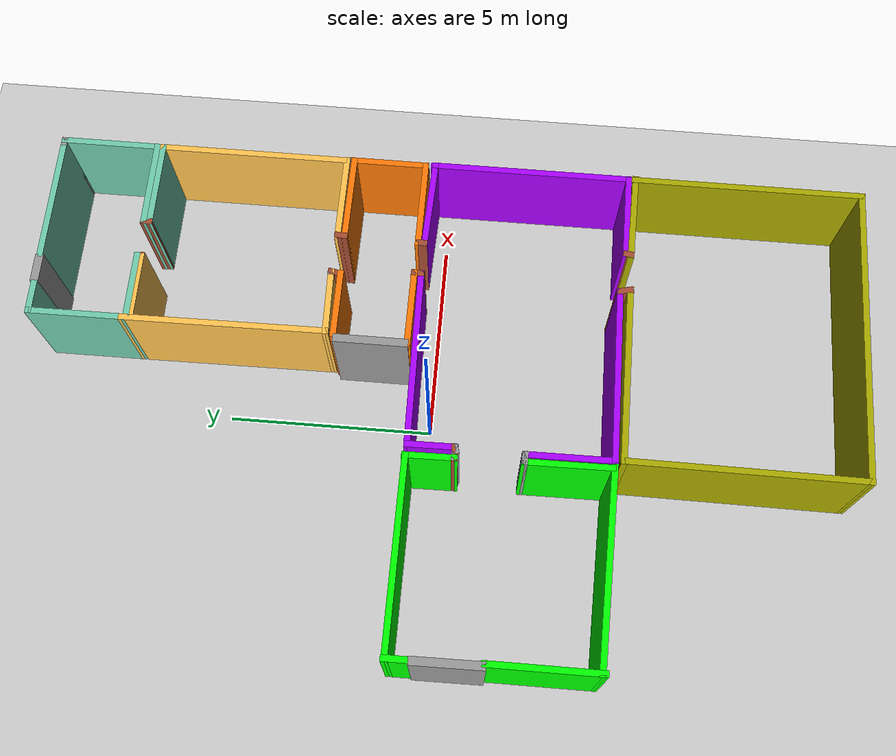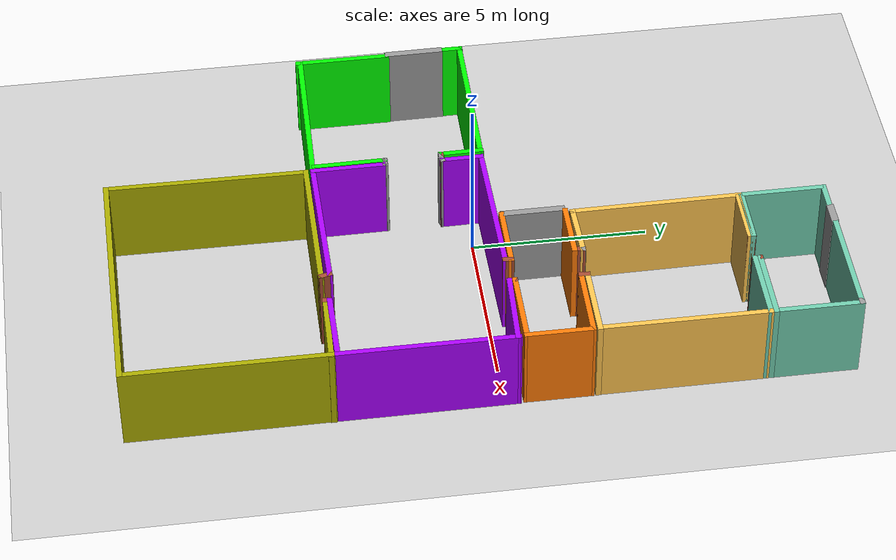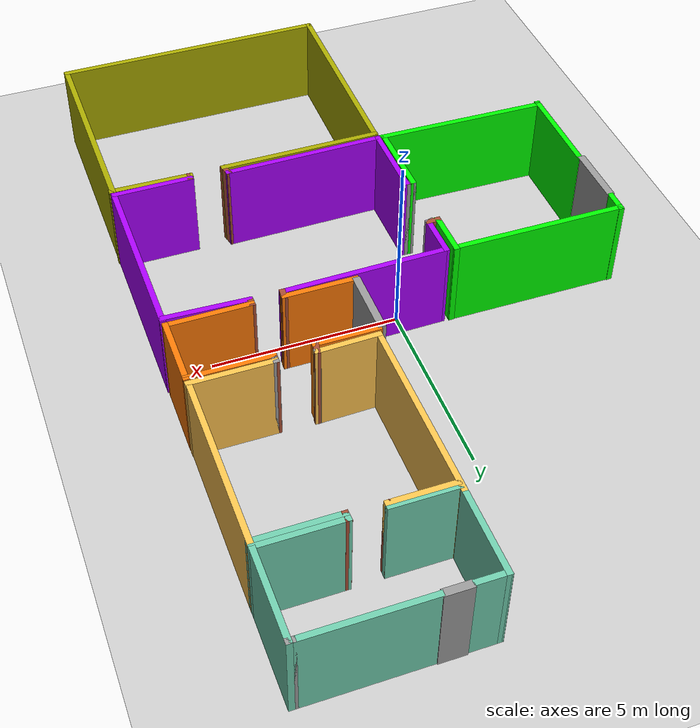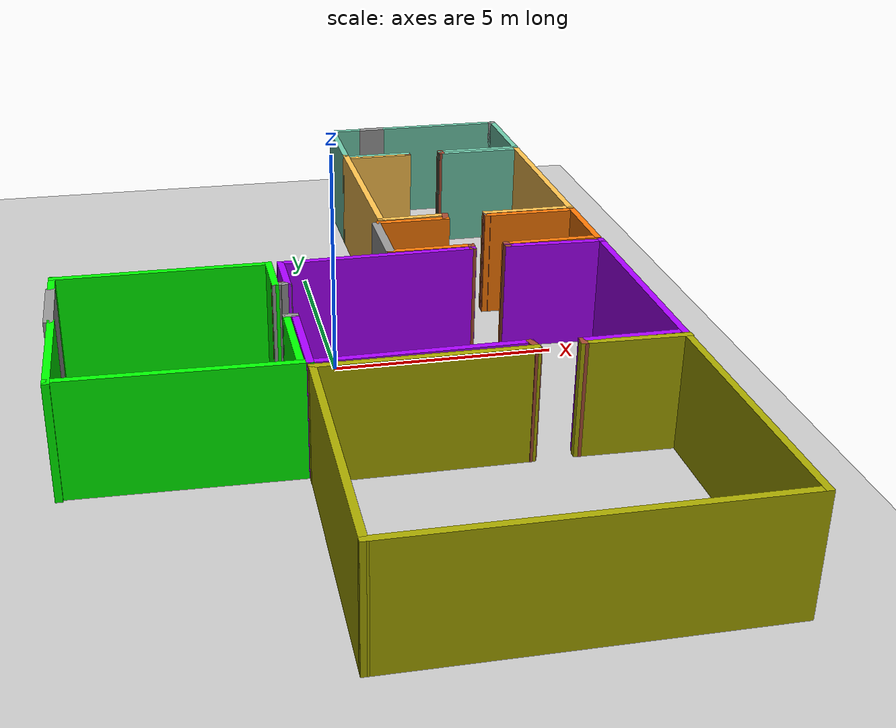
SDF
<sdf version="1.6">
 <world name="default">
  <light name="sun" type="directional">
   <pose>0 0 10 0 -0 0</pose>
   <diffuse>0.8 0.8 0.8 1</diffuse>
   <specular>0.2 0.2 0.2 1</specular>
   <attenuation>
    <range>1000</range>
    <constant>0.9</constant>
    <linear>0.01</linear>
    <quadratic>0.001</quadratic>
   </attenuation>
   <direction>-0.5 0.1 -0.9</direction>
  </light>
  <model name="ground_plane">
   <static>1</static>
   <link name="link">
    <collision name="collision">
     <geometry><plane><normal>0 0 1</normal><size>100 100</size></plane></geometry>
     <surface><friction><ode><mu>100</mu><mu2>50</mu2></ode></friction></surface>
    </collision>
    <visual name="visual">
     <cast_shadows>0</cast_shadows>
     <geometry><plane><normal>0 0 1</normal><size>100 100</size></plane></geometry>
     <material>
      <script><uri>file://media/materials/scripts/gazebo.material</uri><name>Gazebo/Grey</name></script>
     </material>
    </visual>
   </link>
  </model>
  <gravity>0 0 -9.8</gravity>
  <magnetic_field>6e-06 2.3e-05 -4.2e-05</magnetic_field>
  <atmosphere type="adiabatic"/>
  <physics name="default_physics" default="0" type="ode">
   <max_step_size>0.001</max_step_size>
   <real_time_factor>1</real_time_factor>
   <real_time_update_rate>1000</real_time_update_rate>
  </physics>
  <scene><ambient>0.4 0.4 0.4 1</ambient><background>0.7 0.7 0.7 1</background><shadows>1</shadows></scene>
  <spherical_coordinates>
   <surface_model>EARTH_WGS84</surface_model>
   <latitude_deg>0</latitude_deg>
   <longitude_deg>0</longitude_deg>
   <elevation>0</elevation>
   <heading_deg>0</heading_deg>
  </spherical_coordinates>
  <model name="MuseumOfNature">
   <pose>0.139597 -0.238583 0 0 -0 0</pose>
   <link name="Door_0">
    <collision name="Door_0_Collision">
     <geometry><box><size>0.709025 0.2 2.5</size></box></geometry>
     <pose>0 0 1.25 0 -0 0</pose>
    </collision>
    <visual name="Door_0_Visual">
     <pose>0 0 1.25 0 -0 0</pose>
     <geometry><box><size>0.709025 0.2 2.5</size></box></geometry>
     <material>
      <script><uri>file://media/materials/scripts/gazebo.material</uri><name>Gazebo/Grey</name></script>
     </material>
    </visual>
    <pose>2.46689 9.94542 0 0 -0 0</pose>
   </link>
   <link name="Door_1">
    <collision name="Door_1_Collision">
     <geometry><box><size>1.694 0.2 2.5</size></box></geometry>
     <pose>0 0 1.25 0 -0 0</pose>
    </collision>
    <visual name="Door_1_Visual">
     <pose>0 0 1.25 0 -0 0</pose>
     <geometry><box><size>1.694 0.2 2.5</size></box></geometry>
     <material>
      <script><uri>file://media/materials/scripts/gazebo.material</uri><name>Gazebo/Grey</name></script>
     </material>
    </visual>
    <pose>-6.1026 -0.705159 0 0 0 -1.56211</pose>
   </link>
   <link name="Door_2">
    <collision name="Door_2_Collision">
     <geometry><box><size>1.79983 0.2 2.5</size></box></geometry>
     <pose>0 0 1.25 0 -0 0</pose>
    </collision>
    <visual name="Door_2_Visual">
     <pose>0 0 1.25 0 -0 0</pose>
     <geometry><box><size>1.79983 0.2 2.5</size></box></geometry>
     <material>
      <script><uri>file://media/materials/scripts/gazebo.material</uri><name>Gazebo/Grey</name></script>
     </material>
    </visual>
    <pose>1.24189 1.73202 0 0 0 -1.57111</pose>
   </link>
   <link name="Wall_101">
    <collision name="Wall_101_Collision">
     <geometry><box><size>0.260697 0.15 2.5</size></box></geometry>
     <pose>0 0 1.25 0 -0 0</pose>
    </collision>
    <visual name="Wall_101_Visual">
     <pose>0 0 1.25 0 -0 0</pose>
     <geometry><box><size>0.260697 0.15 2.5</size></box></geometry>
     <material>
      <script><uri>file://media/materials/scripts/gazebo.material</uri><name>Gazebo/Bricks</name></script>
      <ambient>1 1 1 1</ambient>
     </material>
     <meta><layer>0</layer></meta>
    </visual>
    <pose>4.00839 -4.2707 0 0 0 -1.68022</pose>
   </link>
   <link name="Wall_102">
    <collision name="Wall_102_Collision">
     <geometry><box><size>2.25854 0.15 2.5</size></box></geometry>
     <pose>0 0 1.25 0 -0 0</pose>
    </collision>
    <visual name="Wall_102_Visual">
     <pose>0 0 1.25 0 -0 0</pose>
     <geometry><box><size>2.25854 0.15 2.5</size></box></geometry>
     <material>
      <script><uri>file://media/materials/scripts/gazebo.material</uri><name>Gazebo/Grey</name></script>
      <ambient>0.666667 0.666667 0 1</ambient>
     </material>
     <meta><layer>0</layer></meta>
    </visual>
    <pose>5.04486 -4.34898 0 0 0 -0.022066</pose>
   </link>
   <link name="Wall_104">
    <collision name="Wall_104_Collision">
     <geometry><box><size>7.5 0.15 2.5</size></box></geometry>
     <pose>0 0 1.25 0 -0 0</pose>
    </collision>
    <visual name="Wall_104_Visual">
     <pose>0 0 1.25 0 -0 0</pose>
     <geometry><box><size>7.5 0.15 2.5</size></box></geometry>
     <material>
      <script><uri>file://media/materials/scripts/gazebo.material</uri><name>Gazebo/Grey</name></script>
      <ambient>0.666667 0.666667 0 1</ambient>
     </material>
     <meta><layer>0</layer></meta>
    </visual>
    <pose>2.40061 -9.94898 0 0 -0 3.14159</pose>
   </link>
   <link name="Wall_105">
    <collision name="Wall_105_Collision">
     <geometry><box><size>5.75593 0.15 2.5</size></box></geometry>
     <pose>0 0 1.25 0 -0 0</pose>
    </collision>
    <visual name="Wall_105_Visual">
     <pose>0 0 1.25 0 -0 0</pose>
     <geometry><box><size>5.75593 0.15 2.5</size></box></geometry>
     <material>
      <script><uri>file://media/materials/scripts/gazebo.material</uri><name>Gazebo/Grey</name></script>
      <ambient>0.666667 0.666667 0 1</ambient>
     </material>
     <meta><layer>0</layer></meta>
    </visual>
    <pose>-1.25607 -7.14585 0 0 -0 1.56426</pose>
   </link>
   <link name="Wall_106">
    <collision name="Wall_106_Collision">
     <geometry><box><size>4.45 0.15 2.5</size></box></geometry>
     <pose>0 0 1.25 0 -0 0</pose>
    </collision>
    <visual name="Wall_106_Visual">
     <pose>0 0 1.25 0 -0 0</pose>
     <geometry><box><size>4.45 0.15 2.5</size></box></geometry>
     <material>
      <script><uri>file://media/materials/scripts/gazebo.material</uri><name>Gazebo/Grey</name></script>
      <ambient>0.666667 0.666667 0 1</ambient>
     </material>
     <meta><layer>0</layer></meta>
    </visual>
    <pose>0.905797 -4.34272 0 0 -0 0</pose>
   </link>
   <link name="Wall_108">
    <collision name="Wall_108_Collision">
     <geometry><box><size>0.398011 0.15 2.5</size></box></geometry>
     <pose>0 0 1.25 0 -0 0</pose>
    </collision>
    <visual name="Wall_108_Visual">
     <pose>0 0 1.25 0 -0 0</pose>
     <geometry><box><size>0.398011 0.15 2.5</size></box></geometry>
     <material>
      <script><uri>file://media/materials/scripts/gazebo.material</uri><name>Gazebo/Bricks</name></script>
      <ambient>1 1 1 1</ambient>
     </material>
     <meta><layer>0</layer></meta>
    </visual>
    <pose>3.03401 -4.22197 0 0 0 -1.34105</pose>
   </link>
   <link name="Wall_11">
    <collision name="Wall_11_Collision">
     <geometry><box><size>3.25 0.15 2.5</size></box></geometry>
     <pose>0 0 1.25 0 -0 0</pose>
    </collision>
    <visual name="Wall_11_Visual">
     <pose>0 0 1.25 0 -0 0</pose>
     <geometry><box><size>3.25 0.15 2.5</size></box></geometry>
     <material>
      <script><uri>file://media/materials/scripts/gazebo.material</uri><name>Gazebo/Grey</name></script>
      <ambient>0.435294 0.796078 0.67451 1</ambient>
     </material>
     <meta><layer>0</layer></meta>
    </visual>
    <pose>4.40297 9.94924 0 0 -0 0</pose>
   </link>
   <link name="Wall_110">
    <collision name="Wall_110_Collision">
     <geometry><box><size>0.15 0.15 2.5</size></box></geometry>
     <pose>0 0 1.25 0 -0 0</pose>
    </collision>
    <visual name="Wall_110_Visual">
     <pose>0 0 1.25 0 -0 0</pose>
     <geometry><box><size>0.15 0.15 2.5</size></box></geometry>
     <material>
      <script><uri>file://media/materials/scripts/gazebo.material</uri><name>Gazebo/Grey</name></script>
      <ambient>1 1 1 1</ambient>
     </material>
     <meta><layer>0</layer></meta>
    </visual>
    <pose>-1.26965 -2.09072 0 0 -0 0</pose>
   </link>
   <link name="Wall_111">
    <collision name="Wall_111_Collision">
     <geometry><box><size>0.15 0.15 2.5</size></box></geometry>
     <pose>0 0 1.25 0 -0 0</pose>
    </collision>
    <visual name="Wall_111_Visual">
     <pose>0 0 1.25 0 -0 0</pose>
     <geometry><box><size>0.15 0.15 2.5</size></box></geometry>
     <material>
      <script><uri>file://media/materials/scripts/gazebo.material</uri><name>Gazebo/Grey</name></script>
      <ambient>1 1 1 1</ambient>
     </material>
     <meta><layer>0</layer></meta>
    </visual>
    <pose>-1.26965 -2.09072 0 0 -0 0</pose>
   </link>
   <link name="Wall_113">
    <collision name="Wall_113_Collision">
     <geometry><box><size>0.324658 0.15 2.5</size></box></geometry>
     <pose>0 0 1.25 0 -0 0</pose>
    </collision>
    <visual name="Wall_113_Visual">
     <pose>0 0 1.25 0 -0 0</pose>
     <geometry><box><size>0.324658 0.15 2.5</size></box></geometry>
     <material>
      <script><uri>file://media/materials/scripts/gazebo.material</uri><name>Gazebo/Grey</name></script>
      <ambient>1 1 1 1</ambient>
     </material>
     <meta><layer>0</layer></meta>
    </visual>
    <pose>-1.35715 -2.08822 0 0 -0 3.11303</pose>
   </link>
   <link name="Wall_114">
    <collision name="Wall_114_Collision">
     <geometry><box><size>0.324658 0.15 2.5</size></box></geometry>
     <pose>0 0 1.25 0 -0 0</pose>
    </collision>
    <visual name="Wall_114_Visual">
     <pose>0 0 1.25 0 -0 0</pose>
     <geometry><box><size>0.324658 0.15 2.5</size></box></geometry>
     <material>
      <script><uri>file://media/materials/scripts/gazebo.material</uri><name>Gazebo/Grey</name></script>
      <ambient>1 1 1 1</ambient>
     </material>
     <meta><layer>0</layer></meta>
    </visual>
    <pose>-1.35715 -2.08822 0 0 0 -0.028564</pose>
   </link>
   <link name="Wall_115">
    <collision name="Wall_115_Collision">
     <geometry><box><size>0.324658 0.15 2.5</size></box></geometry>
     <pose>0 0 1.25 0 -0 0</pose>
    </collision>
    <visual name="Wall_115_Visual">
     <pose>0 0 1.25 0 -0 0</pose>
     <geometry><box><size>0.324658 0.15 2.5</size></box></geometry>
     <material>
      <script><uri>file://media/materials/scripts/gazebo.material</uri><name>Gazebo/Grey</name></script>
      <ambient>1 1 1 1</ambient>
     </material>
     <meta><layer>0</layer></meta>
    </visual>
    <pose>-1.35715 -2.08822 0 0 -0 3.11303</pose>
   </link>
   <link name="Wall_116">
    <collision name="Wall_116_Collision">
     <geometry><box><size>0.324658 0.15 2.5</size></box></geometry>
     <pose>0 0 1.25 0 -0 0</pose>
    </collision>
    <visual name="Wall_116_Visual">
     <pose>0 0 1.25 0 -0 0</pose>
     <geometry><box><size>0.324658 0.15 2.5</size></box></geometry>
     <material>
      <script><uri>file://media/materials/scripts/gazebo.material</uri><name>Gazebo/Grey</name></script>
      <ambient>1 1 1 1</ambient>
     </material>
     <meta><layer>0</layer></meta>
    </visual>
    <pose>-1.35715 -2.08822 0 0 0 -0.028564</pose>
   </link>
   <link name="Wall_117">
    <collision name="Wall_117_Collision">
     <geometry><box><size>0.324658 0.15 2.5</size></box></geometry>
     <pose>0 0 1.25 0 -0 0</pose>
    </collision>
    <visual name="Wall_117_Visual">
     <pose>0 0 1.25 0 -0 0</pose>
     <geometry><box><size>0.324658 0.15 2.5</size></box></geometry>
     <material>
      <script><uri>file://media/materials/scripts/gazebo.material</uri><name>Gazebo/Grey</name></script>
      <ambient>1 1 1 1</ambient>
     </material>
     <meta><layer>0</layer></meta>
    </visual>
    <pose>-1.35715 -2.08822 0 0 -0 3.11303</pose>
   </link>
   <link name="Wall_118">
    <collision name="Wall_118_Collision">
     <geometry><box><size>0.324658 0.15 2.5</size></box></geometry>
     <pose>0 0 1.25 0 -0 0</pose>
    </collision>
    <visual name="Wall_118_Visual">
     <pose>0 0 1.25 0 -0 0</pose>
     <geometry><box><size>0.324658 0.15 2.5</size></box></geometry>
     <material>
      <script><uri>file://media/materials/scripts/gazebo.material</uri><name>Gazebo/Bricks</name></script>
      <ambient>1 1 1 1</ambient>
     </material>
     <meta><layer>0</layer></meta>
    </visual>
    <pose>-1.35715 -2.08822 0 0 0 -0.028564</pose>
   </link>
   <link name="Wall_12">
    <collision name="Wall_12_Collision">
     <geometry><box><size>0.22355 0.15 2.5</size></box></geometry>
     <pose>0 0 1.25 0 -0 0</pose>
    </collision>
    <visual name="Wall_12_Visual">
     <pose>0 0 1.25 0 -0 0</pose>
     <geometry><box><size>0.22355 0.15 2.5</size></box></geometry>
     <material>
      <script><uri>file://media/materials/scripts/gazebo.material</uri><name>Gazebo/Grey</name></script>
      <ambient>1 1 1 1</ambient>
     </material>
     <meta><layer>0</layer></meta>
    </visual>
    <pose>6.00297 9.94924 0 0 -0 0</pose>
   </link>
   <link name="Wall_13">
    <collision name="Wall_13_Collision">
     <geometry><box><size>2.5 0.15 2.5</size></box></geometry>
     <pose>0 0 1.25 0 -0 0</pose>
    </collision>
    <visual name="Wall_13_Visual">
     <pose>0 0 1.25 0 -0 0</pose>
     <geometry><box><size>2.5 0.15 2.5</size></box></geometry>
     <material>
      <script><uri>file://media/materials/scripts/gazebo.material</uri><name>Gazebo/Grey</name></script>
      <ambient>0.435294 0.796078 0.67451 1</ambient>
     </material>
     <meta><layer>0</layer></meta>
    </visual>
    <pose>6.03975 8.77425 0 0 0 -1.5708</pose>
   </link>
   <link name="Wall_14">
    <collision name="Wall_14_Collision">
     <geometry><box><size>2.25 0.15 2.5</size></box></geometry>
     <pose>0 0 1.25 0 -0 0</pose>
    </collision>
    <visual name="Wall_14_Visual">
     <pose>0 0 1.25 0 -0 0</pose>
     <geometry><box><size>2.25 0.15 2.5</size></box></geometry>
     <material>
      <script><uri>file://media/materials/scripts/gazebo.material</uri><name>Gazebo/Grey</name></script>
      <ambient>0.435294 0.796078 0.67451 1</ambient>
     </material>
     <meta><layer>0</layer></meta>
    </visual>
    <pose>4.98975 7.59924 0 0 -0 3.14159</pose>
   </link>
   <link name="Wall_15">
    <collision name="Wall_15_Collision">
     <geometry><box><size>0.297009 0.15 2.5</size></box></geometry>
     <pose>0 0 1.25 0 -0 0</pose>
    </collision>
    <visual name="Wall_15_Visual">
     <pose>0 0 1.25 0 -0 0</pose>
     <geometry><box><size>0.297009 0.15 2.5</size></box></geometry>
     <material>
      <script><uri>file://media/materials/scripts/gazebo.material</uri><name>Gazebo/Bricks</name></script>
      <ambient>1 1 1 1</ambient>
     </material>
     <meta><layer>0</layer></meta>
    </visual>
    <pose>3.94155 7.52576 0 0 0 -1.54629</pose>
   </link>
   <link name="Wall_16">
    <collision name="Wall_16_Collision">
     <geometry><box><size>2.25 0.15 2.5</size></box></geometry>
     <pose>0 0 1.25 0 -0 0</pose>
    </collision>
    <visual name="Wall_16_Visual">
     <pose>0 0 1.25 0 -0 0</pose>
     <geometry><box><size>2.25 0.15 2.5</size></box></geometry>
     <material>
      <script><uri>file://media/materials/scripts/gazebo.material</uri><name>Gazebo/Grey</name></script>
      <ambient>0.435294 0.796078 0.67451 1</ambient>
     </material>
     <meta><layer>0</layer></meta>
    </visual>
    <pose>4.99335 7.45228 0 0 -0 0</pose>
   </link>
   <link name="Wall_18">
    <collision name="Wall_18_Collision">
     <geometry><box><size>4.703 0.15 2.5</size></box></geometry>
     <pose>0 0 1.25 0 -0 0</pose>
    </collision>
    <visual name="Wall_18_Visual">
     <pose>0 0 1.25 0 -0 0</pose>
     <geometry><box><size>4.703 0.15 2.5</size></box></geometry>
     <material>
      <script><uri>file://media/materials/scripts/gazebo.material</uri><name>Gazebo/Grey</name></script>
      <ambient>1 0.764706 0.305882 1</ambient>
     </material>
     <meta><layer>0</layer></meta>
    </visual>
    <pose>6.04135 5.17578 0 0 0 -1.57167</pose>
   </link>
   <link name="Wall_20">
    <collision name="Wall_20_Collision">
     <geometry><box><size>2.25 0.15 2.5</size></box></geometry>
     <pose>0 0 1.25 0 -0 0</pose>
    </collision>
    <visual name="Wall_20_Visual">
     <pose>0 0 1.25 0 -0 0</pose>
     <geometry><box><size>2.25 0.15 2.5</size></box></geometry>
     <material>
      <script><uri>file://media/materials/scripts/gazebo.material</uri><name>Gazebo/Grey</name></script>
      <ambient>1 0.764706 0.305882 1</ambient>
     </material>
     <meta><layer>0</layer></meta>
    </visual>
    <pose>5.00128 2.81881 0 0 -0 0</pose>
   </link>
   <link name="Wall_22">
    <collision name="Wall_22_Collision">
     <geometry><box><size>0.25 0.15 2.5</size></box></geometry>
     <pose>0 0 1.25 0 -0 0</pose>
    </collision>
    <visual name="Wall_22_Visual">
     <pose>0 0 1.25 0 -0 0</pose>
     <geometry><box><size>0.25 0.15 2.5</size></box></geometry>
     <material>
      <script><uri>file://media/materials/scripts/gazebo.material</uri><name>Gazebo/Grey</name></script>
      <ambient>1 1 1 1</ambient>
     </material>
     <meta><layer>0</layer></meta>
    </visual>
    <pose>3.95128 2.76881 0 0 0 -1.5708</pose>
   </link>
   <link name="Wall_32">
    <collision name="Wall_32_Collision">
     <geometry><box><size>0.318048 0.15 2.5</size></box></geometry>
     <pose>0 0 1.25 0 -0 0</pose>
    </collision>
    <visual name="Wall_32_Visual">
     <pose>0 0 1.25 0 -0 0</pose>
     <geometry><box><size>0.318048 0.15 2.5</size></box></geometry>
     <material>
      <script><uri>file://media/materials/scripts/gazebo.material</uri><name>Gazebo/Bricks</name></script>
      <ambient>1 1 1 1</ambient>
     </material>
     <meta><layer>0</layer></meta>
    </visual>
    <pose>3.94564 2.73498 0 0 0 -1.63796</pose>
   </link>
   <link name="Wall_33">
    <collision name="Wall_33_Collision">
     <geometry><box><size>2.26131 0.15 2.5</size></box></geometry>
     <pose>0 0 1.25 0 -0 0</pose>
    </collision>
    <visual name="Wall_33_Visual">
     <pose>0 0 1.25 0 -0 0</pose>
     <geometry><box><size>2.26131 0.15 2.5</size></box></geometry>
     <material>
      <script><uri>file://media/materials/scripts/gazebo.material</uri><name>Gazebo/Grey</name></script>
      <ambient>0.996078 0.47451 0.0196078 1</ambient>
     </material>
     <meta><layer>0</layer></meta>
    </visual>
    <pose>4.9994 2.64174 0 0 0 -0.005342</pose>
   </link>
   <link name="Wall_38">
    <collision name="Wall_38_Collision">
     <geometry><box><size>1.93783 0.15 2.5</size></box></geometry>
     <pose>0 0 1.25 0 -0 0</pose>
    </collision>
    <visual name="Wall_38_Visual">
     <pose>0 0 1.25 0 -0 0</pose>
     <geometry><box><size>1.93783 0.15 2.5</size></box></geometry>
     <material>
      <script><uri>file://media/materials/scripts/gazebo.material</uri><name>Gazebo/Grey</name></script>
      <ambient>0.996078 0.47451 0.0196078 1</ambient>
     </material>
     <meta><layer>0</layer></meta>
    </visual>
    <pose>6.05319 1.74219 0 0 -0 1.56873</pose>
   </link>
   <link name="Wall_40">
    <collision name="Wall_40_Collision">
     <geometry><box><size>2.297 0.15 2.5</size></box></geometry>
     <pose>0 0 1.25 0 -0 0</pose>
    </collision>
    <visual name="Wall_40_Visual">
     <pose>0 0 1.25 0 -0 0</pose>
     <geometry><box><size>2.297 0.15 2.5</size></box></geometry>
     <material>
      <script><uri>file://media/materials/scripts/gazebo.material</uri><name>Gazebo/Grey</name></script>
      <ambient>0.996078 0.47451 0.0196078 1</ambient>
     </material>
     <meta><layer>0</layer></meta>
    </visual>
    <pose>4.97785 0.84678 0 0 -0 0.001397</pose>
   </link>
   <link name="Wall_42">
    <collision name="Wall_42_Collision">
     <geometry><box><size>0.302631 0.15 2.5</size></box></geometry>
     <pose>0 0 1.25 0 -0 0</pose>
    </collision>
    <visual name="Wall_42_Visual">
     <pose>0 0 1.25 0 -0 0</pose>
     <geometry><box><size>0.302631 0.15 2.5</size></box></geometry>
     <material>
      <script><uri>file://media/materials/scripts/gazebo.material</uri><name>Gazebo/Bricks</name></script>
      <ambient>1 1 1 1</ambient>
     </material>
     <meta><layer>0</layer></meta>
    </visual>
    <pose>3.90435 0.768964 0 0 0 -1.5708</pose>
   </link>
   <link name="Wall_43">
    <collision name="Wall_43_Collision">
     <geometry><box><size>2.31863 0.15 2.5</size></box></geometry>
     <pose>0 0 1.25 0 -0 0</pose>
    </collision>
    <visual name="Wall_43_Visual">
     <pose>0 0 1.25 0 -0 0</pose>
     <geometry><box><size>2.31863 0.15 2.5</size></box></geometry>
     <material>
      <script><uri>file://media/materials/scripts/gazebo.material</uri><name>Gazebo/Grey</name></script>
      <ambient>0.666667 0 1 1</ambient>
     </material>
     <meta><layer>0</layer></meta>
    </visual>
    <pose>4.99164 0.647688 0 0 0 -0.038006</pose>
   </link>
   <link name="Wall_46">
    <collision name="Wall_46_Collision">
     <geometry><box><size>5 0.15 2.5</size></box></geometry>
     <pose>0 0 1.25 0 -0 0</pose>
    </collision>
    <visual name="Wall_46_Visual">
     <pose>0 0 1.25 0 -0 0</pose>
     <geometry><box><size>5 0.15 2.5</size></box></geometry>
     <material>
      <script><uri>file://media/materials/scripts/gazebo.material</uri><name>Gazebo/Grey</name></script>
      <ambient>0.666667 0 1 1</ambient>
     </material>
     <meta><layer>0</layer></meta>
    </visual>
    <pose>6.07517 -1.78333 0 0 -0 1.5708</pose>
   </link>
   <link name="Wall_51">
    <collision name="Wall_51_Collision">
     <geometry><box><size>2.15 0.15 2.5</size></box></geometry>
     <pose>0 0 1.25 0 -0 0</pose>
    </collision>
    <visual name="Wall_51_Visual">
     <pose>0 0 1.25 0 -0 0</pose>
     <geometry><box><size>2.15 0.15 2.5</size></box></geometry>
     <material>
      <script><uri>file://media/materials/scripts/gazebo.material</uri><name>Gazebo/Grey</name></script>
      <ambient>0 1 0 1</ambient>
     </material>
     <meta><layer>0</layer></meta>
    </visual>
    <pose>-1.4363 -3.08559 0 0 -0 1.57915</pose>
   </link>
   <link name="Wall_54">
    <collision name="Wall_54_Collision">
     <geometry><box><size>2.19398 0.15 2.5</size></box></geometry>
     <pose>0 0 1.25 0 -0 0</pose>
    </collision>
    <visual name="Wall_54_Visual">
     <pose>0 0 1.25 0 -0 0</pose>
     <geometry><box><size>2.19398 0.15 2.5</size></box></geometry>
     <material>
      <script><uri>file://media/materials/scripts/gazebo.material</uri><name>Gazebo/Grey</name></script>
      <ambient>0.666667 0 1 1</ambient>
     </material>
     <meta><layer>0</layer></meta>
    </visual>
    <pose>-1.26375 -3.11269 0 0 0 -1.56502</pose>
   </link>
   <link name="Wall_55">
    <collision name="Wall_55_Collision">
     <geometry><box><size>4.94275 0.15 2.5</size></box></geometry>
     <pose>0 0 1.25 0 -0 0</pose>
    </collision>
    <visual name="Wall_55_Visual">
     <pose>0 0 1.25 0 -0 0</pose>
     <geometry><box><size>4.94275 0.15 2.5</size></box></geometry>
     <material>
      <script><uri>file://media/materials/scripts/gazebo.material</uri><name>Gazebo/Grey</name></script>
      <ambient>0 1 0 1</ambient>
     </material>
     <meta><layer>0</layer></meta>
    </visual>
    <pose>-3.64889 -4.09747 0 0 -0 3.122</pose>
   </link>
   <link name="Wall_56">
    <collision name="Wall_56_Collision">
     <geometry><box><size>2.75 0.15 2.5</size></box></geometry>
     <pose>0 0 1.25 0 -0 0</pose>
    </collision>
    <visual name="Wall_56_Visual">
     <pose>0 0 1.25 0 -0 0</pose>
     <geometry><box><size>2.75 0.15 2.5</size></box></geometry>
     <material>
      <script><uri>file://media/materials/scripts/gazebo.material</uri><name>Gazebo/Grey</name></script>
      <ambient>0 1 0 1</ambient>
     </material>
     <meta><layer>0</layer></meta>
    </visual>
    <pose>-6.0448 -2.8117 0 0 -0 1.5708</pose>
   </link>
   <link name="Wall_58">
    <collision name="Wall_58_Collision">
     <geometry><box><size>5.01629 0.15 2.5</size></box></geometry>
     <pose>0 0 1.25 0 -0 0</pose>
    </collision>
    <visual name="Wall_58_Visual">
     <pose>0 0 1.25 0 -0 0</pose>
     <geometry><box><size>5.01629 0.15 2.5</size></box></geometry>
     <material>
      <script><uri>file://media/materials/scripts/gazebo.material</uri><name>Gazebo/Grey</name></script>
      <ambient>1 0.764706 0.305882 1</ambient>
     </material>
     <meta><layer>0</layer></meta>
    </visual>
    <pose>1.38035 5.25328 0 0 0 -1.56299</pose>
   </link>
   <link name="Wall_59">
    <collision name="Wall_59_Collision">
     <geometry><box><size>1.71 0.15 2.5</size></box></geometry>
     <pose>0 0 1.25 0 -0 0</pose>
    </collision>
    <visual name="Wall_59_Visual">
     <pose>0 0 1.25 0 -0 0</pose>
     <geometry><box><size>1.71 0.15 2.5</size></box></geometry>
     <material>
      <script><uri>file://media/materials/scripts/gazebo.material</uri><name>Gazebo/Grey</name></script>
      <ambient>1 0.764706 0.305882 1</ambient>
     </material>
     <meta><layer>0</layer></meta>
    </visual>
    <pose>2.17909 2.84022 0 0 -0 0.025562</pose>
   </link>
   <link name="Wall_60">
    <collision name="Wall_60_Collision">
     <geometry><box><size>0.15 0.15 2.5</size></box></geometry>
     <pose>0 0 1.25 0 -0 0</pose>
    </collision>
    <visual name="Wall_60_Visual">
     <pose>0 0 1.25 0 -0 0</pose>
     <geometry><box><size>0.15 0.15 2.5</size></box></geometry>
     <material>
      <script><uri>file://media/materials/scripts/gazebo.material</uri><name>Gazebo/Grey</name></script>
      <ambient>1 1 1 1</ambient>
     </material>
     <meta><layer>0</layer></meta>
    </visual>
    <pose>2.95884 2.86015 0 0 -0 0</pose>
   </link>
   <link name="Wall_61">
    <collision name="Wall_61_Collision">
     <geometry><box><size>0.371335 0.15 2.5</size></box></geometry>
     <pose>0 0 1.25 0 -0 0</pose>
    </collision>
    <visual name="Wall_61_Visual">
     <pose>0 0 1.25 0 -0 0</pose>
     <geometry><box><size>0.371335 0.15 2.5</size></box></geometry>
     <material>
      <script><uri>file://media/materials/scripts/gazebo.material</uri><name>Gazebo/Bricks</name></script>
      <ambient>1 1 1 1</ambient>
     </material>
     <meta><layer>0</layer></meta>
    </visual>
    <pose>2.939 2.75128 0 0 0 -1.75102</pose>
   </link>
   <link name="Wall_62">
    <collision name="Wall_62_Collision">
     <geometry><box><size>1.75 0.15 2.5</size></box></geometry>
     <pose>0 0 1.25 0 -0 0</pose>
    </collision>
    <visual name="Wall_62_Visual">
     <pose>0 0 1.25 0 -0 0</pose>
     <geometry><box><size>1.75 0.15 2.5</size></box></geometry>
     <material>
      <script><uri>file://media/materials/scripts/gazebo.material</uri><name>Gazebo/Grey</name></script>
      <ambient>0.996078 0.47451 0.0196078 1</ambient>
     </material>
     <meta><layer>0</layer></meta>
    </visual>
    <pose>2.13239 2.62918 0 0 -0 3.14159</pose>
   </link>
   <link name="Wall_65">
    <collision name="Wall_65_Collision">
     <geometry><box><size>2 0.15 2.5</size></box></geometry>
     <pose>0 0 1.25 0 -0 0</pose>
    </collision>
    <visual name="Wall_65_Visual">
     <pose>0 0 1.25 0 -0 0</pose>
     <geometry><box><size>2 0.15 2.5</size></box></geometry>
     <material>
      <script><uri>file://media/materials/scripts/gazebo.material</uri><name>Gazebo/Grey</name></script>
      <ambient>0.996078 0.47451 0.0196078 1</ambient>
     </material>
     <meta><layer>0</layer></meta>
    </visual>
    <pose>2.1724 0.859645 0 0 -0 0</pose>
   </link>
   <link name="Wall_66">
    <collision name="Wall_66_Collision">
     <geometry><box><size>0.316651 0.15 2.5</size></box></geometry>
     <pose>0 0 1.25 0 -0 0</pose>
    </collision>
    <visual name="Wall_66_Visual">
     <pose>0 0 1.25 0 -0 0</pose>
     <geometry><box><size>0.316651 0.15 2.5</size></box></geometry>
     <material>
      <script><uri>file://media/materials/scripts/gazebo.material</uri><name>Gazebo/Bricks</name></script>
      <ambient>1 1 1 1</ambient>
     </material>
     <meta><layer>0</layer></meta>
    </visual>
    <pose>3.09079 0.776582 0 0 0 -1.65024</pose>
   </link>
   <link name="Wall_67">
    <collision name="Wall_67_Collision">
     <geometry><box><size>4.47399 0.15 2.5</size></box></geometry>
     <pose>0 0 1.25 0 -0 0</pose>
    </collision>
    <visual name="Wall_67_Visual">
     <pose>0 0 1.25 0 -0 0</pose>
     <geometry><box><size>4.47399 0.15 2.5</size></box></geometry>
     <material>
      <script><uri>file://media/materials/scripts/gazebo.material</uri><name>Gazebo/Grey</name></script>
      <ambient>0.666667 0 1 1</ambient>
     </material>
     <meta><layer>0</layer></meta>
    </visual>
    <pose>0.922439 0.660337 0 0 0 -3.12624</pose>
   </link>
   <link name="Wall_68">
    <collision name="Wall_68_Collision">
     <geometry><box><size>1.24995 0.15 2.5</size></box></geometry>
     <pose>0 0 1.25 0 -0 0</pose>
    </collision>
    <visual name="Wall_68_Visual">
     <pose>0 0 1.25 0 -0 0</pose>
     <geometry><box><size>1.24995 0.15 2.5</size></box></geometry>
     <material>
      <script><uri>file://media/materials/scripts/gazebo.material</uri><name>Gazebo/Grey</name></script>
      <ambient>0.666667 0 1 1</ambient>
     </material>
     <meta><layer>0</layer></meta>
    </visual>
    <pose>-1.23298 0.077217 0 0 0 -1.5593</pose>
   </link>
   <link name="Wall_77">
    <collision name="Wall_77_Collision">
     <geometry><box><size>0.240503 0.15 2.5</size></box></geometry>
     <pose>0 0 1.25 0 -0 0</pose>
    </collision>
    <visual name="Wall_77_Visual">
     <pose>0 0 1.25 0 -0 0</pose>
     <geometry><box><size>0.240503 0.15 2.5</size></box></geometry>
     <material>
      <script><uri>file://media/materials/scripts/gazebo.material</uri><name>Gazebo/Grey</name></script>
      <ambient>1 1 1 1</ambient>
     </material>
     <meta><layer>0</layer></meta>
    </visual>
    <pose>-1.26998 -0.485783 0 0 0 -2.84876</pose>
   </link>
   <link name="Wall_80">
    <collision name="Wall_80_Collision">
     <geometry><box><size>0.657425 0.15 2.5</size></box></geometry>
     <pose>0 0 1.25 0 -0 0</pose>
    </collision>
    <visual name="Wall_80_Visual">
     <pose>0 0 1.25 0 -0 0</pose>
     <geometry><box><size>0.657425 0.15 2.5</size></box></geometry>
     <material>
      <script><uri>file://media/materials/scripts/gazebo.material</uri><name>Gazebo/Grey</name></script>
      <ambient>0 1 0 1</ambient>
     </material>
     <meta><layer>0</layer></meta>
    </visual>
    <pose>-6.1003 0.415041 0 0 -0 1.5708</pose>
   </link>
   <link name="Wall_81">
    <collision name="Wall_81_Collision">
     <geometry><box><size>4.74966 0.15 2.5</size></box></geometry>
     <pose>0 0 1.25 0 -0 0</pose>
    </collision>
    <visual name="Wall_81_Visual">
     <pose>0 0 1.25 0 -0 0</pose>
     <geometry><box><size>4.74966 0.15 2.5</size></box></geometry>
     <material>
      <script><uri>file://media/materials/scripts/gazebo.material</uri><name>Gazebo/Grey</name></script>
      <ambient>0 1 0 1</ambient>
     </material>
     <meta><layer>0</layer></meta>
    </visual>
    <pose>-3.80047 0.649004 0 0 0 -0.002837</pose>
   </link>
   <link name="Wall_82">
    <collision name="Wall_82_Collision">
     <geometry><box><size>1.29252 0.15 2.5</size></box></geometry>
     <pose>0 0 1.25 0 -0 0</pose>
    </collision>
    <visual name="Wall_82_Visual">
     <pose>0 0 1.25 0 -0 0</pose>
     <geometry><box><size>1.29252 0.15 2.5</size></box></geometry>
     <material>
      <script><uri>file://media/materials/scripts/gazebo.material</uri><name>Gazebo/Grey</name></script>
      <ambient>0 1 0 1</ambient>
     </material>
     <meta><layer>0</layer></meta>
    </visual>
    <pose>-1.49315 0.084492 0 0 0 -1.55767</pose>
   </link>
   <link name="Wall_83">
    <collision name="Wall_83_Collision">
     <geometry><box><size>0.409275 0.15 2.5</size></box></geometry>
     <pose>0 0 1.25 0 -0 0</pose>
    </collision>
    <visual name="Wall_83_Visual">
     <pose>0 0 1.25 0 -0 0</pose>
     <geometry><box><size>0.409275 0.15 2.5</size></box></geometry>
     <material>
      <script><uri>file://media/materials/scripts/gazebo.material</uri><name>Gazebo/Grey</name></script>
      <ambient>1 1 1 1</ambient>
     </material>
     <meta><layer>0</layer></meta>
    </visual>
    <pose>-1.35615 -0.47972 0 0 -0 0.054001</pose>
   </link>
   <link name="Wall_84">
    <collision name="Wall_84_Collision">
     <geometry><box><size>0.409673 0.15 2.5</size></box></geometry>
     <pose>0 0 1.25 0 -0 0</pose>
    </collision>
    <visual name="Wall_84_Visual">
     <pose>0 0 1.25 0 -0 0</pose>
     <geometry><box><size>0.409673 0.15 2.5</size></box></geometry>
     <material>
      <script><uri>file://media/materials/scripts/gazebo.material</uri><name>Gazebo/Bricks</name></script>
      <ambient>1 1 1 1</ambient>
     </material>
     <meta><layer>0</layer></meta>
    </visual>
    <pose>-1.35615 -0.47972 0 0 0 -3.08759</pose>
   </link>
   <link name="Wall_86">
    <collision name="Wall_86_Collision">
     <geometry><box><size>4.40896 0.15 2.5</size></box></geometry>
     <pose>0 0 1.25 0 -0 0</pose>
    </collision>
    <visual name="Wall_86_Visual">
     <pose>0 0 1.25 0 -0 0</pose>
     <geometry><box><size>4.40896 0.15 2.5</size></box></geometry>
     <material>
      <script><uri>file://media/materials/scripts/gazebo.material</uri><name>Gazebo/Grey</name></script>
      <ambient>0.666667 0 1 1</ambient>
     </material>
     <meta><layer>0</layer></meta>
    </visual>
    <pose>0.876395 -4.12282 0 0 -0 0.010142</pose>
   </link>
   <link name="Wall_88">
    <collision name="Wall_88_Collision">
     <geometry><box><size>2.2 0.15 2.5</size></box></geometry>
     <pose>0 0 1.25 0 -0 0</pose>
    </collision>
    <visual name="Wall_88_Visual">
     <pose>0 0 1.25 0 -0 0</pose>
     <geometry><box><size>2.2 0.15 2.5</size></box></geometry>
     <material>
      <script><uri>file://media/materials/scripts/gazebo.material</uri><name>Gazebo/Grey</name></script>
      <ambient>0.666667 0 1 1</ambient>
     </material>
     <meta><layer>0</layer></meta>
    </visual>
    <pose>5.03944 -4.20418 0 0 -0 0</pose>
   </link>
   <link name="Wall_9">
    <collision name="Wall_9_Collision">
     <geometry><box><size>2.4 0.15 2.5</size></box></geometry>
     <pose>0 0 1.25 0 -0 0</pose>
    </collision>
    <visual name="Wall_9_Visual">
     <pose>0 0 1.25 0 -0 0</pose>
     <geometry><box><size>2.4 0.15 2.5</size></box></geometry>
     <material>
      <script><uri>file://media/materials/scripts/gazebo.material</uri><name>Gazebo/Grey</name></script>
      <ambient>0.435294 0.796078 0.67451 1</ambient>
     </material>
     <meta><layer>0</layer></meta>
    </visual>
    <pose>1.35739 8.81117 0 0 0 -1.56728</pose>
   </link>
   <link name="Wall_90">
    <collision name="Wall_90_Collision">
     <geometry><box><size>1.75 0.15 2.5</size></box></geometry>
     <pose>0 0 1.25 0 -0 0</pose>
    </collision>
    <visual name="Wall_90_Visual">
     <pose>0 0 1.25 0 -0 0</pose>
     <geometry><box><size>1.75 0.15 2.5</size></box></geometry>
     <material>
      <script><uri>file://media/materials/scripts/gazebo.material</uri><name>Gazebo/Grey</name></script>
      <ambient>0.435294 0.796078 0.67451 1</ambient>
     </material>
     <meta><layer>0</layer></meta>
    </visual>
    <pose>2.2115 7.59378 0 0 -0 0</pose>
   </link>
   <link name="Wall_91">
    <collision name="Wall_91_Collision">
     <geometry><box><size>0.25 0.15 2.5</size></box></geometry>
     <pose>0 0 1.25 0 -0 0</pose>
    </collision>
    <visual name="Wall_91_Visual">
     <pose>0 0 1.25 0 -0 0</pose>
     <geometry><box><size>0.25 0.15 2.5</size></box></geometry>
     <material>
      <script><uri>file://media/materials/scripts/gazebo.material</uri><name>Gazebo/Bricks</name></script>
      <ambient>1 1 1 1</ambient>
     </material>
     <meta><layer>0</layer></meta>
    </visual>
    <pose>3.0115 7.54378 0 0 0 -1.5708</pose>
   </link>
   <link name="Wall_92">
    <collision name="Wall_92_Collision">
     <geometry><box><size>1.75 0.15 2.5</size></box></geometry>
     <pose>0 0 1.25 0 -0 0</pose>
    </collision>
    <visual name="Wall_92_Visual">
     <pose>0 0 1.25 0 -0 0</pose>
     <geometry><box><size>1.75 0.15 2.5</size></box></geometry>
     <material>
      <script><uri>file://media/materials/scripts/gazebo.material</uri><name>Gazebo/Grey</name></script>
      <ambient>1 0.764706 0.305882 1</ambient>
     </material>
     <meta><layer>0</layer></meta>
    </visual>
    <pose>2.2115 7.49378 0 0 -0 3.14159</pose>
   </link>
   <link name="Wall_94">
    <collision name="Wall_94_Collision">
     <geometry><box><size>0.854414 0.15 2.5</size></box></geometry>
     <pose>0 0 1.25 0 -0 0</pose>
    </collision>
    <visual name="Wall_94_Visual">
     <pose>0 0 1.25 0 -0 0</pose>
     <geometry><box><size>0.854414 0.15 2.5</size></box></geometry>
     <material>
      <script><uri>file://media/materials/scripts/gazebo.material</uri><name>Gazebo/Grey</name></script>
      <ambient>0.435294 0.796078 0.67451 1</ambient>
     </material>
     <meta><layer>0</layer></meta>
    </visual>
    <pose>1.71321 9.93615 0 0 0 -3.14133</pose>
   </link>
   <link name="Wall_98">
    <collision name="Wall_98_Collision">
     <geometry><box><size>5.75 0.15 2.5</size></box></geometry>
     <pose>0 0 1.25 0 -0 0</pose>
    </collision>
    <visual name="Wall_98_Visual">
     <pose>0 0 1.25 0 -0 0</pose>
     <geometry><box><size>5.75 0.15 2.5</size></box></geometry>
     <material>
      <script><uri>file://media/materials/scripts/gazebo.material</uri><name>Gazebo/Grey</name></script>
      <ambient>0.666667 0.666667 0 1</ambient>
     </material>
     <meta><layer>0</layer></meta>
    </visual>
    <pose>6.07561 -7.14898 0 0 -0 1.5708</pose>
   </link>
   <static>1</static>
  </model>
 </world>
</sdf>
